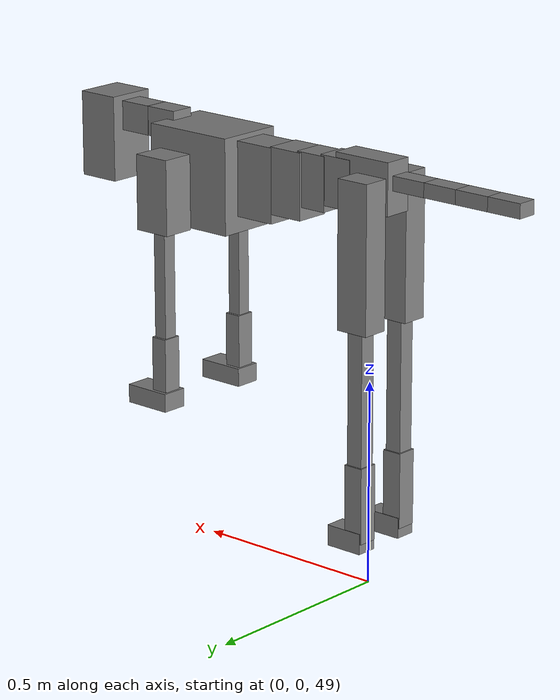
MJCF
<mujoco model="dog">

    <default>
        <joint armature="0.02" stiffness="1" damping="0.2" limited="true"/>
        <geom condim="3" friction="1 0.05 0.05" margin="0.01"/>
        <motor ctrllimited="true" ctrlrange="-1.0 1.0" forcelimited="true" gear="50"/>
    </default>

    <compiler inertiafromgeom="true" angle="radian"/>

    <option timestep="0.016" iterations="50" tolerance="1e-10" solver="Newton" jacobian="dense" cone="pyramidal"/>

    <size nconmax="20000" njmax="60000" nstack="5000000"/>
    <visual>
        <map force="0.1" zfar="30"/>
        <rgba haze="0.15 0.25 0.35 1"/>
        <quality shadowsize="2048"/>
        <global offwidth="800" offheight="800"/>
    </visual>

    <asset>
        <texture type="skybox" builtin="gradient" rgb1="0.3 0.5 0.7" rgb2="0 0 0" width="512" height="512"/>
        <texture name="texplane" type="2d" builtin="checker" rgb1=".2 .3 .4" rgb2=".1 0.15 0.2" width="512" height="512"
                 mark="cross" markrgb=".8 .8 .8"/>
        <texture name="texgeom" type="cube" builtin="flat" mark="cross" width="127" height="1278" rgb1="0.8 0.6 0.4"
                 rgb2="0.8 0.6 0.4" markrgb="1 1 1" random="0.01"/>

        <material name="matplane" reflectance="0.3" texture="texplane" texrepeat="1 1" texuniform="true"/>
        <material name="matgeom" texture="texgeom" texuniform="true" rgba="0.8 0.6 .4 1"/>
    </asset>

    <worldbody>
        <geom name="floor" pos="0 0 0" size="0 0 .25" type="plane" material="matplane" condim="3"/>

        <light directional="false" diffuse=".2 .2 .2" specular="0 0 0" pos="0 0 5" dir="0 0 -1" castshadow="false"/>
        <light mode="targetbodycom" target="torso" directional="false" diffuse=".8 .8 .8" specular="0.3 0.3 0.3"
               pos="0 0 4.0" dir="0 0 -1"/>

        <body name="root" pos="0 0 50">
            <freejoint name="root_1"/>
            <geom type="box" pos="0 0 -0.02" size="0.0774  0.0358  0.063" density="2030"/>

            <body name="spine1" pos="0.054 0 0">
                <joint name="spine1_y" axis="0 1 0" range="0 0.7" limited="true"/>
                <geom type="box" pos="0.02375 0 -0.03" size="0.04375  0.0375  0.05985" density="2030"/>

                <body name="spine2" pos="0.0612 0 0">
                    <joint name="spine2_y" axis="0 1 0" range="-0.15 0.15" limited="true"/>
                    <geom type="box" pos="0.03555  0  -0.04" size="0.04055  0.039  0.06615" density="2030"/>

                    <body name="spine3" pos="0.0730 0 0">
                        <joint name="spine3_y" axis="0 1 0" range="-0.15 0.15" limited="true"/>
                        <geom type="box" pos="0.03555  0  -0.057" size="0.04555  0.0445  0.081" density="2030"/>

                        <body name="spine4" pos="0.0780 0 0">
                            <joint name="spine4_y" axis="0 1 0" range="-0.15 0.15" limited="true"/>
                            <geom type="box" pos="0.05265  0  -0.07" size="0.05265  0.045  0.09135" density="2030"/>

                            <body name="torso" pos="0.1082 0 0">
                                <joint name="torso_y" axis="0 1 0" range="-0.15 0.15" limited="true"/>
                                <geom type="box" pos="0.11925  0  -0.085" size="0.11925  0.085  0.11745"
                                      density="2030"/>

                                <body name="neck1" pos="0.2160  0   0.0180">
                                    <joint name="neck1_y" axis="0 1 0" range="-1.2  -1" limited="true"/>
                                    <geom type="box" pos="0.0423  0  0" size="0.0423  0.03  0.036" density="2325"/>

                                    <body name="neck2" pos="0.0853  0  0">
                                        <joint name="neck2_y" axis="0 1 0" range="0.1  0" limited="true"/>
                                        <geom type="box" pos="0.0423  0  0" size="0.0423  0.03  0.036" density="2325"/>

                                        <body name="head" pos="0.0853  0  0">
                                            <joint name="head_y" axis="0 1 0" range="-0.3  -0.2" limited="true"/>
                                            <geom type="box" pos="0.0531  0  -0.055" size="0.0531  0.06  0.1044"
                                                  density="4030"/>

                                        </body>
                                    </body>
                                </body>

                                <body name="front_shoulder" pos="0.156  0   -0.0480">
                                    <joint name="front_shoulder_y" axis="0 1 0" range="-1 1.5" limited="true"/>
                                    <geom type="box" pos="0 0.13 -0.0654" size="0.0477  0.0408  0.0921" density="1158"/>
                                    <geom type="box" pos="0 -0.13 -0.0654" size="0.0477  0.0408  0.0921"
                                          density="1158"/>

                                    <body name="front_elbow" pos="0  0  -0.1308">
                                        <joint name="front_elbow_y" axis="0 1 0" range="-2 0" limited="true"/>
                                        <geom type="box" pos="0 0.13 -0.1523" size="0.0167  0.0171  0.1523"
                                              density="1081"/>
                                        <geom type="box" pos="0 -0.13 -0.1523" size="0.0167  0.0171  0.1523"
                                              density="1081"/>

                                        <body name="front_wrist" pos="0  0  -0.3046">
                                            <joint name="front_wrist_y" axis="0 1 0" range="-0.2 0" limited="true"/>
                                            <geom type="box" pos="0 0.13 -0.0673" size="0.0211  0.0235  0.0805"
                                                  density="1664"/>
                                            <geom type="box" pos="0 -0.13 -0.0673" size="0.0211  0.0235  0.0805"
                                                  density="1664"/>

                                            <body name="front_finger_end" pos="0  0  -0.1346">
                                                <joint name="front_finger_y" axis="0 1 0" range="-0.4 1"
                                                       limited="true"/>
                                                <geom type="box" pos="0.0328  0.13  -0.0076"
                                                      size="0.0601  0.0328  0.0226" density="1515"/>
                                                <geom type="box" pos="0.0328  -0.13  -0.0076"
                                                      size="0.0601  0.0328  0.0226" density="1515"/>

                                            </body>

                                        </body>
                                    </body>
                                </body>

                            </body>
                        </body>
                    </body>
                </body>
            </body>

            <body name="back_hip" pos="-0.03 0 -0.018">
                <joint name="back_hip_y" axis="0 1 0" range="-1.5 0.3" limited="true"/>
                <geom type="box" pos="0 0.07 -0.1561" size="0.0424  0.0333  0.1789" density="1154"/>
                <geom type="box" pos="0 -0.07 -0.1561" size="0.0424  0.0333  0.1789" density="1154"/>

                <body name="back_knee" pos="0  0  -0.3123">
                    <joint name="back_knee_y" axis="0 1 0" range="0 2.8" limited="true"/>
                    <geom type="box" pos="0 0.07 -0.1793" size="0.0208  0.0205  0.1948" density="1227"/>
                    <geom type="box" pos="0 -0.07 -0.1793" size="0.0208  0.0205  0.1948" density="1227"/>

                    <body name="back_ankle" pos="0  0  -0.3585">
                        <joint name="back_ankle_y" axis="0 1 0" range="-2.2 0" limited="true"/>
                        <geom type="box" pos="0 0.07 -0.0822" size="0.0249  0.0249  0.0934" density="1284"/>
                        <geom type="box" pos="0 -0.07 -0.0822" size="0.0249  0.0249  0.0934" density="1284"/>

                        <body name="back_toe_end" pos="0  0  -0.1643">
                            <joint name="back_toe_y" axis="0 1 0" range="-0.4 1" limited="true"/>
                            <geom type="box" pos="0.0264  0.07  -0.0104" size="0.0484  0.0264  0.0254" density="1515"/>
                            <geom type="box" pos="0.0264  -0.07  -0.0104" size="0.0484  0.0264  0.0254" density="1515"/>

                        </body>
                    </body>
                </body>
            </body>

            <body name="tail1" pos="-0.074 0 -0.006">
                <joint name="tail1_y" axis="0 1 0" range="-0.2 0.2" limited="true"/>
                <geom type="box" pos="-0.0536  0  0" size="0.045  0.025  0.0175" density="1587"/>

                <body name="tail2" pos="-0.09 0 0">
                    <joint name="tail2_y" axis="0 1 0" range="-0.2 0.2" limited="true"/>
                    <geom type="box" pos="-0.0536  0  0" size="0.045  0.025  0.0175" density="1587"/>

                    <body name="tail3" pos="-0.09 0 0">
                        <joint name="tail3_y" axis="0 1 0" range="-0.2 0.2" limited="true"/>
                        <geom type="box" pos="-0.0536  0  0" size="0.045  0.025  0.0175" density="1587"/>

                        <body name="tail4" pos="-0.09 0 0">
                            <joint name="tail4_y" axis="0 1 0" range="-0.2 0.2" limited="true"/>
                            <geom type="box" pos="-0.0536  0  0" size="0.045  0.025  0.0175" density="1587"/>

                        </body>
                    </body>
                </body>
            </body>
        </body>
    </worldbody>

    <actuator>
        <motor joint="spine1_y" forcerange="-150 150     "/>
        <motor joint="spine2_y" forcerange="-150 150     "/>
        <motor joint="spine3_y" forcerange="-150 150     "/>
        <motor joint="spine4_y" forcerange="-150 150     "/>
        <motor joint="torso_y" forcerange="-150 150     "/>
        <motor joint="neck1_y" forcerange="-100 100       "/>
        <motor joint="neck2_y" forcerange="-100 100       "/>
        <motor joint="head_y" forcerange="-150 150       "/>
        <motor joint="front_shoulder_y" forcerange="-197.19 174.72"/>
        <motor joint="front_elbow_y" forcerange="-122.13 102.19"/>
        <motor joint="front_wrist_y" forcerange="-62.52 125.23"/>
        <motor joint="front_finger_y" forcerange="-73.28 61.44"/>
        <motor joint="back_hip_y" forcerange="-298.41 345.51"/>
        <motor joint="back_knee_y" forcerange="-253.97 244.61"/>
        <motor joint="back_angle_y" forcerange="-183.38 114.51"/>
        <motor joint="back_toe_y" forcerange="-95.87 35.27"/>
        <motor joint="tail1_y" forcerange="-50 50     "/>
        <motor joint="tail2_y" forcerange="-50 50     "/>
        <motor joint="tail3_y" forcerange="-50 50     "/>
        <motor joint="tail4_y" forcerange="-50 50     "/>
    </actuator>
</mujoco>
